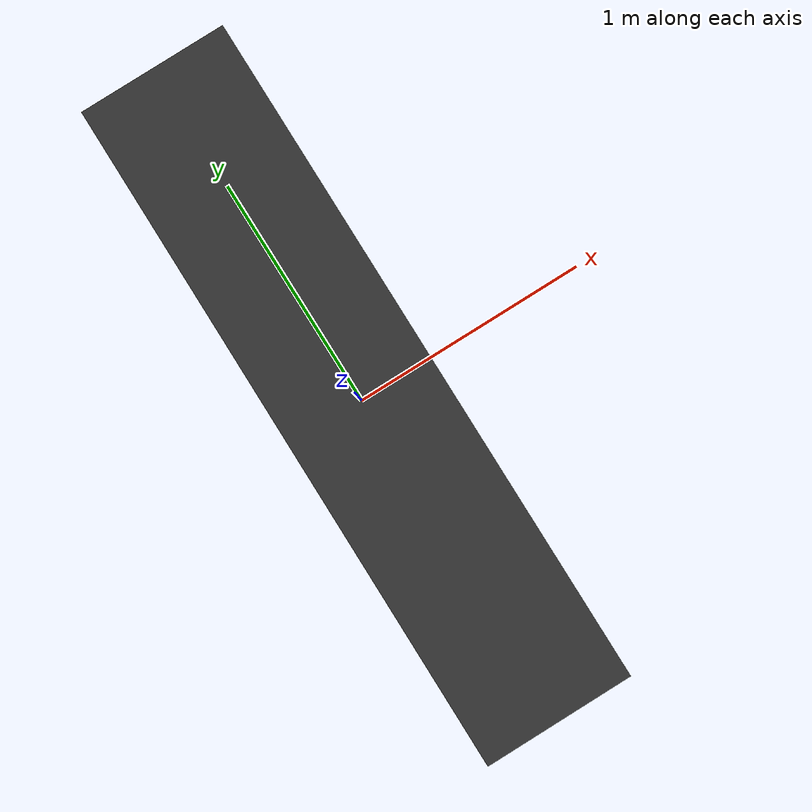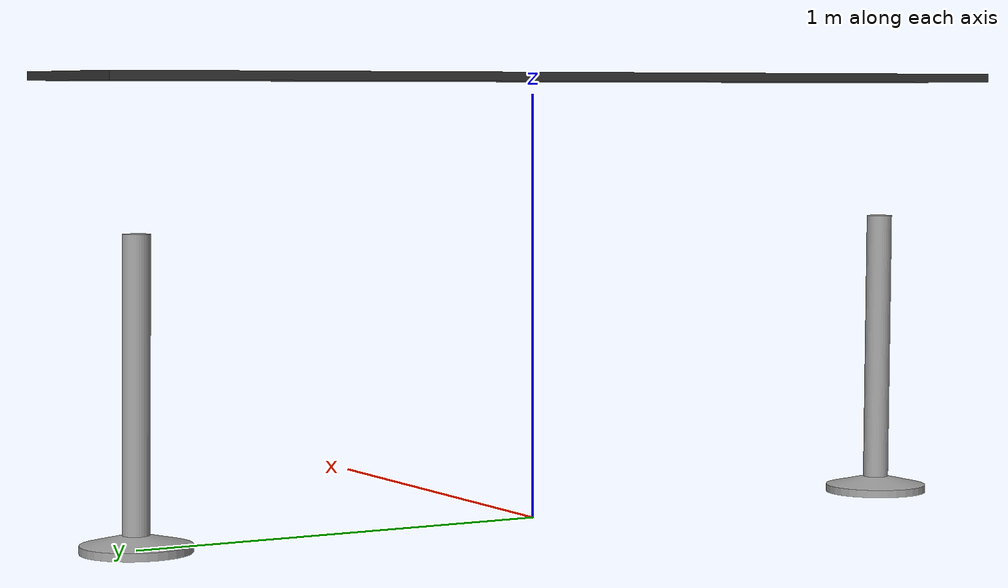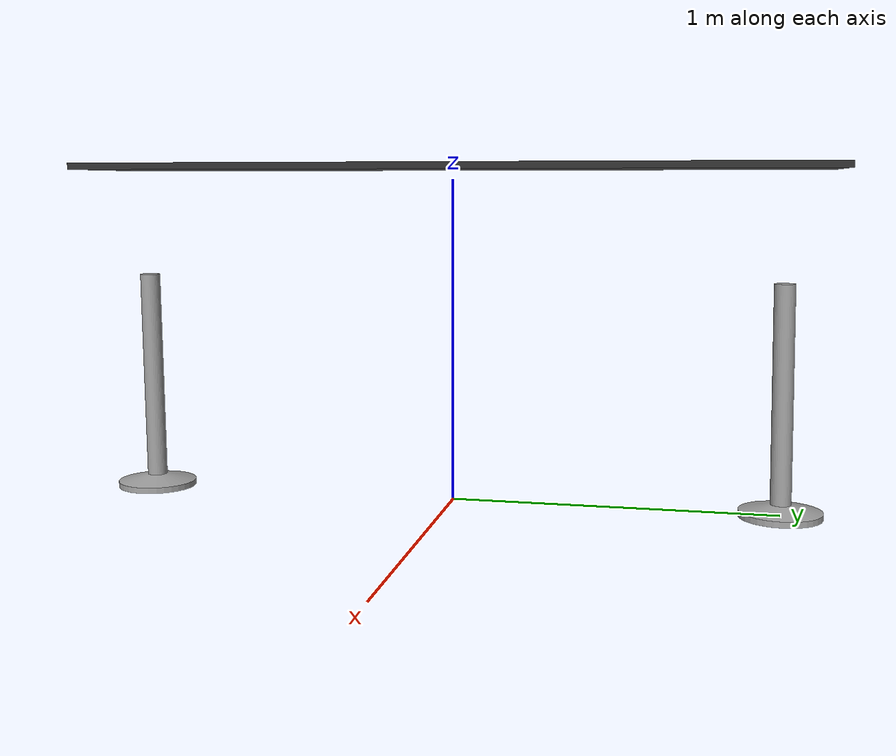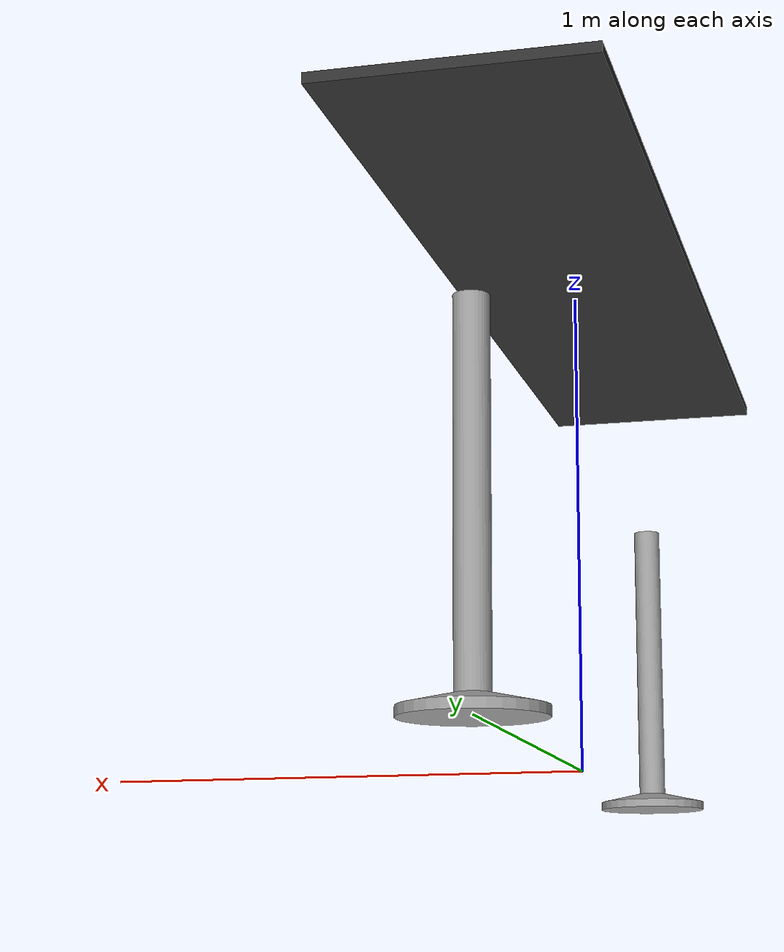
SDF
<?xml version="1.0" ?>
<sdf version="1.4">
    <model name='high_table'>
      <link name='link'>
        <pose>0.0 0.0 0.0 0 0 0</pose>
        <inertial>
          <mass>10.0</mass>
          <inertia>
            <ixx>1</ixx>
            <ixy>0</ixy>
            <ixz>0</ixz>
            <iyy>1</iyy>
            <iyz>0</iyz>
            <izz>1</izz>
          </inertia>
        </inertial>
        <visual name='top_board'>
          <pose>0 0 1.04 0 0 0</pose>
          <geometry>
            <box>
              <size>0.5 2.3 0.02</size>
            </box>
          </geometry>
          <material>
            <!-- base_materials/dark_wood -->
            <name>dark_wood</name>
            <ambient>0.2 0.2 0.2 1</ambient>
            <diffuse>0.2 0.2 0.2 1.0</diffuse>
            <specular>0 0 0 1.0</specular>
            <shininess>12.5</shininess>
            <pbr>
              <metal>
                <albedo_map>model://base_materials/wood/textures/light_wood.png</albedo_map>
                <max_anisotropy>16</max_anisotropy>
                <metalness>0</metalness>
              </metal>
            </pbr>
          </material>
        </visual>
        <collision name='collision_top_board'>
          <pose>0 0 1.04 0 0 0</pose>
          <geometry>
            <box>
              <size>0.5 2.3 0.02</size>
            </box>
          </geometry>
          <max_contacts>10</max_contacts>
          <surface>
            <bounce/>
            <friction>
              <ode/>
            </friction>
            <contact>
              <ode/>
            </contact>
          </surface>
        </collision>
        <visual name='left_poll'>
          <pose>0 1.00 0 0 0 0</pose>
          <geometry>
            <mesh>
              <uri>model://high_table/meshes/poll.dae</uri>
            </mesh>
          </geometry>
          <material>
          </material>
        </visual>
        <collision name='collision_left_poll'>
          <pose>0 1.00 0 0 0 0</pose>
          <geometry>
            <mesh>
              <uri>model://high_table/meshes/poll.dae</uri>
            </mesh>
          </geometry>
          <max_contacts>10</max_contacts>
          <surface>
            <bounce/>
            <friction>
              <ode/>
            </friction>
            <contact>
              <ode/>
            </contact>
          </surface>
        </collision>
        <visual name='right_poll'>
          <pose>0 -1.00 0 0 0 0</pose>
          <geometry>
            <mesh>
              <uri>model://high_table/meshes/poll.dae</uri>
            </mesh>
          </geometry>
          <material>
          </material>
        </visual>
        <collision name='collision_right_poll'>
          <pose>0 -1.00 0 0 0 0</pose>
          <geometry>
            <mesh>
              <uri>model://high_table/meshes/poll.dae</uri>
            </mesh>
          </geometry>
          <max_contacts>10</max_contacts>
          <surface>
            <bounce/>
            <friction>
              <ode/>
            </friction>
            <contact>
              <ode/>
            </contact>
          </surface>
        </collision>
        <velocity_decay>
          <linear>0</linear>
          <angular>0</angular>
        </velocity_decay>
        <self_collide>0</self_collide>
        <kinematic>0</kinematic>
        <gravity>1</gravity>
      </link>
      <static>1</static>
    </model>
</sdf>
